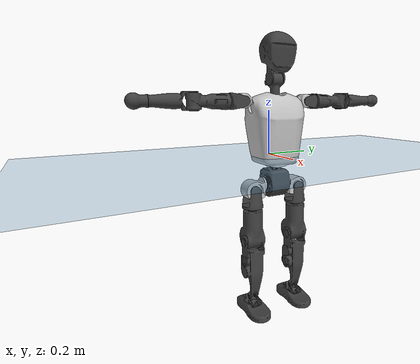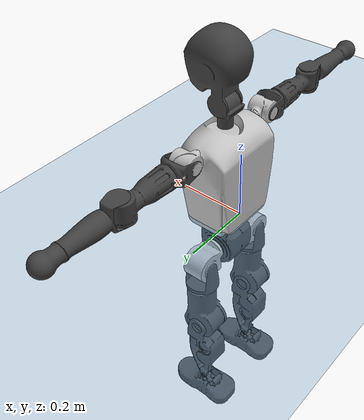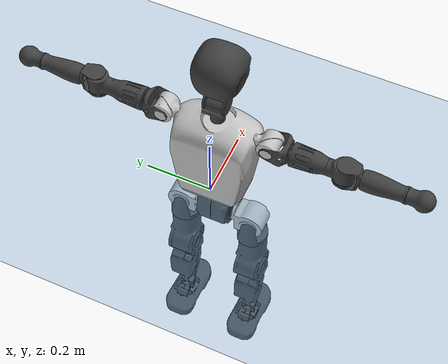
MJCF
<mujoco model="T1">
  <compiler angle="radian" assetdir="assets" balanceinertia="true" inertiafromgeom="false"/>

  <option timestep="0.005" density="1.2" viscosity="2e-05"/>

  <size nkey="1"/>

  <visual>
    <quality shadowsize="8192"/>
    <map shadowclip="0.5"/>
  </visual>

  <default>
    <default class="/">
      <joint armature="0.01" damping="0.01" frictionloss="0.1"/>
      <geom contype="0" conaffinity="0" group="1" solref="-1000 -80"/>
      <site size="0.01 0.005 0.005" group="5"/>
      <general forcelimited="true" biastype="affine" gainprm="25" biasprm="0 -25 -0.6"/>
      <default class="t1">
        <geom rgba="0.25 0.25 0.25 1"/>
        <default class="visual">
          <geom type="mesh" group="2"/>
        </default>
        <default class="collision">
          <geom group="3"/>
        </default>
        <default class="foot">
          <geom size="0.1115 0.05 0.015" type="box" condim="6" group="4" priority="1" solimp="0.015 1 0.015"/>
        </default>
        <default class="reward_collision_sphere">
          <geom group="5" rgba="1 0 0 1"/>
        </default>
      </default>
    </default>
  </default>

  <asset>
    <texture type="skybox" colorspace="auto" name="//unnamed_texture_0" builtin="gradient" rgb1="0.95 0.95 0.95" rgb2="0.95 0.95 0.95" width="100" height="600"/>
    <texture type="2d" colorspace="auto" name="texplane" builtin="checker" rgb1="0.345 0.575 0.748" rgb2="0.345 0.575 0.748" markrgb="1 1 1" width="512" height="512"/>
    <material name="MatPlane" class="/" texture="texplane" texuniform="true" texrepeat="2 2" specular="0.9"/>
    <mesh name="Trunk" class="/" file="Trunk.stl"/>
    <mesh name="H1" class="/" file="H1.stl"/>
    <mesh name="H2" class="/" file="H2.stl"/>
    <mesh name="AL1" class="/" file="AL1.stl"/>
    <mesh name="AL2" class="/" file="AL2.stl"/>
    <mesh name="AL3" class="/" file="AL3.stl"/>
    <mesh name="left_hand_link" class="/" file="left_hand_link.stl"/>
    <mesh name="AR1" class="/" file="AR1.stl"/>
    <mesh name="AR2" class="/" file="AR2.stl"/>
    <mesh name="AR3" class="/" file="AR3.stl"/>
    <mesh name="right_hand_link" class="/" file="right_hand_link.stl"/>
    <mesh name="Waist" class="/" file="Waist.stl"/>
    <mesh name="Hip_Pitch_Left" class="/" file="Hip_Pitch_Left.stl"/>
    <mesh name="Hip_Roll_Left" class="/" file="Hip_Roll_Left.stl"/>
    <mesh name="Hip_Yaw_Left" class="/" file="Hip_Yaw_Left.stl"/>
    <mesh name="Shank_Left" class="/" file="Shank_Left.stl"/>
    <mesh name="Ankle_Cross_Left" class="/" file="Ankle_Cross_Left.stl"/>
    <mesh name="left_foot_link" class="/" file="left_foot_link.stl"/>
    <mesh name="Hip_Pitch_Right" class="/" file="Hip_Pitch_Right.stl"/>
    <mesh name="Hip_Roll_Right" class="/" file="Hip_Roll_Right.stl"/>
    <mesh name="Hip_Yaw_Right" class="/" file="Hip_Yaw_Right.stl"/>
    <mesh name="Shank_Right" class="/" file="Shank_Right.stl"/>
    <mesh name="Ankle_Cross_Right" class="/" file="Ankle_Cross_Right.stl"/>
    <mesh name="right_foot_link" class="/" file="right_foot_link.stl"/>
  </asset>

  <worldbody>
    <geom name="floor" class="/" size="100 100 0.125" type="plane" group="0" material="MatPlane"/>
    <light name="toplight_shadow" class="/" pos="0 0 5" dir="0.0990148 0.0990148 -0.990148" type="directional" ambient="0.04 0.04 0.04" diffuse="0.55 0.55 0.55" specular="0.12 0.12 0.12"/>
    <light name="toplight_fill" class="/" pos="0 0 5" dir="0.0990148 0.0990148 -0.990148" type="directional" castshadow="false" ambient="0.04 0.04 0.04" diffuse="0.3 0.3 0.3" specular="0.08 0.08 0.08"/>
    <body name="trunk" childclass="t1" pos="-0.000458533 0.00031462 8.66824e-05" quat="0.999999 -0.000562115 -0.000772961 -0.000611288">
      <inertial pos="0.04459 -0.00246396 0.117336" quat="0.99997 0.00197151 -0.00735987 0.000972728" mass="11.6061" diaginertia="0.0410629 0.0941629 0.0918969"/>
      <joint name="//unnamed_joint_0" type="free" armature="0" damping="0" frictionloss="0"/>
      <geom name="//unnamed_geom_1" class="visual" rgba="0.76 0.76 0.76 1" mesh="Trunk"/>
      <geom name="//unnamed_geom_2" class="collision" size="0.0750104 0.100014 0.150021" pos="0.050957 0 0.13336" type="box"/>
      <geom name="//unnamed_geom_3" class="reward_collision_sphere" size="0.115016" pos="0.050957 0 0.111133"/>
      <geom name="//unnamed_geom_4" class="reward_collision_sphere" size="0.0150021" pos="0.050957 0.0883831 0"/>
      <geom name="//unnamed_geom_5" class="reward_collision_sphere" size="0.0150021" pos="0.050957 -0.0883831 0"/>
      <geom name="//unnamed_geom_6" class="reward_collision_sphere" size="0.0150021" pos="0.050957 0.111259 0.200039"/>
      <geom name="//unnamed_geom_7" class="reward_collision_sphere" size="0.0150021" pos="0.050957 -0.111259 0.200039"/>
      <site name="imu" pos="0.00435307 -0.00401741 -0.00442628" size="0.0100014"/>
      <camera name="track" pos="0 -2.0796 0" quat="0.707107 0.707107 0 0" mode="trackcom"/>
      <camera name="ego_camera" pos="0.103612 0 0.466759" quat="-0.5 -0.5 0.5 0.5"/>
      <body name="H1" pos="0.0528935 -0.000660315 0.268638" quat="1 -0.000346832 0.000188577 -0.00023054">
        <inertial pos="-0.00150981 0.000738596 0.063212" quat="0.76585 -0.00705856 -0.00692556 0.642943" mass="0.43571" diaginertia="0.000104421 0.000259788 0.000243933"/>
        <joint name="AAHead_yaw" pos="0 0 0" axis="-0.0105504 -0.0030474 0.99994" stiffness="0.0077516" range="-1.55044 1.5746" armature="0.00985946" damping="0.00864831" frictionloss="0.0998991"/>
        <geom name="//unnamed_geom_8" class="visual" mesh="H1"/>
        <body name="H2" pos="-0.000370424 0.00210105 0.0696728" quat="1 -0.000110279 -0.000171132 -1.58566e-05">
          <inertial pos="0.0055572 0.00288053 0.10919" quat="0.988358 0.107031 -0.0754308 -0.077473" mass="0.627703" diaginertia="0.000914686 0.00229365 0.00290913"/>
          <joint name="Head_pitch" pos="0 0 0" axis="0.000681943 -0.999992 0.00389521" range="-1.22232 0.349024" armature="0.00883157" damping="0.00683663" frictionloss="0.1128"/>
          <geom name="//unnamed_geom_9" class="visual" mesh="H2"/>
          <geom name="//unnamed_geom_10" class="collision" size="0.080011" pos="0.00849283 0 0.122246"/>
          <geom name="//unnamed_geom_11" class="reward_collision_sphere" size="0.0900124" pos="0.0169857 0 0.111133"/>
        </body>
      </body>
      <body name="AL1" pos="0.0510942 0.109618 0.241107" quat="1 -1.84875e-06 0.000460047 1.5532e-05">
        <inertial pos="-0.00305137 0.0470477 0.00126357" quat="0.502803 0.495333 -0.504622 0.497183" mass="0.53395" diaginertia="0.000603796 0.00157812 0.00049033"/>
        <joint name="Left_Shoulder_Pitch" pos="0 0 0" axis="0.00117316 0.999916 -0.0128917" range="-3.30923 1.22761" armature="0.0102119" damping="0.00692436" frictionloss="0.0983347"/>
        <geom name="//unnamed_geom_12" class="visual" rgba="0.76 0.76 0.76 1" mesh="AL1"/>
        <body name="AL2" pos="-0.000180686 0.0482598 -0.00111208" quat="1 0.000125542 -0.000101431 7.35349e-05">
          <inertial pos="0.00322329 0.0396799 -0.00198255" quat="0.493091 0.50928 -0.489226 0.508087" mass="0.158784" diaginertia="0.00017555 0.00041776 0.000299177"/>
          <joint name="Left_Shoulder_Roll" pos="0 0 0" axis="-1 -3.17171e-05 -0.00090292" range="-1.57465 1.74004" armature="0.0102171" damping="0.0045538" frictionloss="0.101612"/>
          <geom name="//unnamed_geom_13" class="visual" mesh="AL2"/>
          <body name="AL3" pos="0.000701742 0.0627409 -9.55772e-06" quat="1 0.000132567 -0.000201614 0.000218784">
            <inertial pos="-0.000610739 0.0887814 4.49983e-05" quat="0.706874 0.707239 0.00855736 0.00830879" mass="1.02176" diaginertia="0.00568823 0.0156816 0.00102449"/>
            <joint name="Left_Elbow_Pitch" pos="0 0 0" axis="0.00144975 -0.999999 0.000596683" range="-2.25186 2.27674" armature="0.0100873" damping="0.0233572" frictionloss="0.112257"/>
            <geom name="//unnamed_geom_14" class="visual" mesh="AL3"/>
            <geom name="//unnamed_geom_15" class="collision" size="0.0300041 0.0750104" pos="0 0.0519901 0" quat="0.707105 0.707108 0 0" type="cylinder"/>
            <geom name="//unnamed_geom_16" class="reward_collision_sphere" size="0.036005"/>
            <body name="left_hand_link" pos="0.00259206 0.154012 0.00163644" quat="1 0.000157001 -9.61236e-05 0.000101137">
              <inertial pos="0.00198114 0.113314 -0.00142873" quat="0.708089 0.706103 -0.00312266 -0.00437108" mass="0.326521" diaginertia="0.00357987 0.0101516 0.000371345"/>
              <joint name="Left_Elbow_Yaw" pos="0 0 0" axis="0.000736432 -0.000431923 1" range="-2.45045 0.0204972" armature="0.010233" damping="0.00984023" frictionloss="0.100249"/>
              <geom name="//unnamed_geom_17" class="visual" mesh="left_hand_link"/>
              <geom name="//unnamed_geom_18" class="collision" size="0.0300041 0.0875121" pos="0 0.135174 0" quat="0.707105 0.707108 0 0" type="cylinder"/>
              <geom name="//unnamed_geom_19" class="reward_collision_sphere" size="0.0500069"/>
              <geom name="//unnamed_geom_20" class="reward_collision_sphere" size="0.0350048" pos="0 0.114378 0"/>
              <geom name="//unnamed_geom_21" class="reward_collision_sphere" size="0.0350048" pos="0 0.223557 0"/>
            </body>
          </body>
        </body>
      </body>
      <body name="AR1" pos="0.0480737 -0.111136 0.243171" quat="1 -4.38926e-06 -0.000659668 -0.000563866">
        <inertial pos="-0.00163816 -0.0462649 -0.000755625" quat="0.503679 0.495711 -0.50465 0.495889" mass="0.546552" diaginertia="0.000612073 0.00160722 0.000511822"/>
        <joint name="Right_Shoulder_Pitch" pos="0 0 0" axis="-0.001454 -0.999995 -0.00275145" range="-1.21699 3.30488" armature="0.0105044" damping="0.000449731" frictionloss="0.103218"/>
        <geom name="//unnamed_geom_22" class="visual" rgba="0.76 0.76 0.76 1" mesh="AR1"/>
        <body name="AR2" pos="-0.000702495 -0.0479961 -0.00234299" quat="0.999999 -0.000274705 0.000971347 -3.74509e-05">
          <inertial pos="0.00421175 -0.0403395 0.000813458" quat="0.511151 0.491628 -0.509224 0.487562" mass="0.158569" diaginertia="0.000174974 0.000414404 0.000297181"/>
          <joint name="Right_Shoulder_Roll" pos="0 0 0" axis="-0.999981 0.0059529 0.00160707" range="-1.72778 1.58097" armature="0.0100659" damping="0" frictionloss="0.0994716"/>
          <geom name="//unnamed_geom_23" class="visual" mesh="AR2"/>
          <body name="AR3" pos="-0.00124263 -0.0635908 -0.000804025" quat="0.999999 -0.000385107 0.000128701 0.00097628">
            <inertial pos="0.00218793 -0.0882716 -0.000696716" quat="0.707648 0.70656 -0.00121508 0.00218436" mass="1.02019" diaginertia="0.00582614 0.0161623 0.00108098"/>
            <joint name="Right_Elbow_Pitch" pos="0 0 0" axis="0.00019195 1 -0.000191286" stiffness="0.00301434" range="-2.25301 2.21746" armature="0.0101949" damping="0.0115665" frictionloss="0.0981139"/>
            <geom name="//unnamed_geom_24" class="visual" mesh="AR3"/>
            <geom name="//unnamed_geom_25" class="collision" size="0.0300041 0.0750104" pos="0 -0.0519901 0" quat="0.707105 0.707108 0 0" type="cylinder"/>
            <geom name="//unnamed_geom_26" class="reward_collision_sphere" size="0.036005"/>
            <body name="right_hand_link" pos="-0.000972323 -0.15327 0.00127117" quat="1 -0.000435636 6.9288e-05 -0.000812168">
              <inertial pos="0.00197867 -0.114937 -0.00098636" quat="0.706583 0.70763 -0.000776118 -0.000949235" mass="0.312899" diaginertia="0.00337891 0.00950429 0.000362974"/>
              <joint name="Right_Elbow_Yaw" pos="0 0 0" axis="-0.00038427 0.00353345 0.999994" stiffness="0.000987994" range="-0.00165201 2.39828" armature="0.0104301" damping="0.00428909" frictionloss="0.100965"/>
              <geom name="//unnamed_geom_27" class="visual" mesh="right_hand_link"/>
              <geom name="//unnamed_geom_28" class="collision" size="0.0300041 0.0875121" pos="0 -0.135174 0" quat="0.707105 0.707108 0 0" type="cylinder"/>
              <geom name="//unnamed_geom_29" class="reward_collision_sphere" size="0.0500069"/>
              <geom name="//unnamed_geom_30" class="reward_collision_sphere" size="0.0350048" pos="0 -0.114378 0"/>
              <geom name="//unnamed_geom_31" class="reward_collision_sphere" size="0.0350048" pos="0 -0.223557 0"/>
            </body>
          </body>
        </body>
      </body>
      <body name="Waist" pos="0.0522159 -0.0030053 -0.12842" quat="1 0.000263872 4.75154e-05 -0.000262517">
        <inertial pos="0.000413765 0.000873525 0.00816074" quat="0.983821 0.00485984 -0.178997 0.0056348" mass="2.51524" diaginertia="0.0023909 0.00641191 0.00787044"/>
        <joint name="Waist" pos="0 0 0" axis="0.00590818 7.52209e-05 0.999983" stiffness="0.0012157" range="-1.55843 1.58701" armature="0.0102307" damping="0.000338278" frictionloss="0.100788"/>
        <geom name="//unnamed_geom_32" class="visual" mesh="Waist"/>
        <body name="Hip_Pitch_Left" pos="0.001889 0.110706 -4.51538e-05" quat="1 -6.75917e-05 -7.95981e-05 -6.93808e-05">
          <inertial pos="0.0014484 -0.00749017 -0.0223698" quat="0.974521 0.223595 0.0168646 0.00539567" mass="1.03367" diaginertia="0.00080315 0.00178619 0.00213744"/>
          <joint name="Left_Hip_Pitch" pos="0 0 0" axis="-0.0002257 0.999997 0.00257513" range="-1.80977 1.61072" armature="0.010416" damping="0.00119785" frictionloss="0.0999862"/>
          <geom name="//unnamed_geom_33" class="visual" rgba="0.76 0.76 0.76 1" mesh="Hip_Pitch_Left"/>
          <body name="Hip_Roll_Left" pos="0.00269002 0.00052405 -0.0239092" quat="1 2.96216e-05 -1.26634e-05 9.28356e-05">
            <inertial pos="0.00133639 0.000794387 -0.0614512" quat="0.707153 -0.00649663 -0.00641293 0.707002" mass="0.393648" diaginertia="0.000800686 0.00184176 0.000869834"/>
            <joint name="Left_Hip_Roll" pos="0 0 0" axis="-1 -0.000233716 0.000821829" range="-1.55448 0.247659" armature="0.00978695" damping="0.00458678" frictionloss="0.101319"/>
            <geom name="//unnamed_geom_34" class="visual" mesh="Hip_Roll_Left"/>
            <geom name="//unnamed_geom_35" class="reward_collision_sphere" size="0.0550076"/>
            <body name="Hip_Yaw_Left" pos="-0.000243497 0.00176364 -0.0890653" quat="1 -0.000126647 -0.00012546 0.000140072">
              <inertial pos="-0.0058556 -0.000116342 -0.100209" quat="0.69186 -0.0277472 -0.0314516 0.720813" mass="2.11845" diaginertia="0.011177 0.029701 0.00435713"/>
              <joint name="Left_Hip_Yaw" pos="0 0 0" axis="-0.00187599 -0.00151007 -0.999997" range="-0.992478 1.05707" armature="0.0100591" damping="0" frictionloss="0.0991306"/>
              <geom name="//unnamed_geom_36" class="visual" mesh="Hip_Yaw_Left"/>
              <geom name="//unnamed_geom_37" class="collision" size="0.0500069 0.080011" type="cylinder"/>
              <body name="Shank_Left" pos="-0.0117431 0.0011176 -0.151529" quat="1 -0.00013272 -0.00010953 -1.23349e-05">
                <inertial pos="-0.00555522 0.000646418 -0.13992" quat="0.997596 0.00060684 -0.0208794 0.0660729" mass="1.75957" diaginertia="0.0155427 0.0420651 0.00311007"/>
                <joint name="Left_Knee_Pitch" pos="0 0 0" axis="0.00198349 0.999979 0.0061244" stiffness="0.00457993" range="0.00198362 2.34729" armature="0.0099869" damping="0.0158347" frictionloss="0.105294"/>
                <geom name="//unnamed_geom_38" class="visual" mesh="Shank_Left"/>
                <geom name="//unnamed_geom_39" class="collision" size="0.0500069 0.0750104" pos="0 0 -0.13336" type="cylinder"/>
                <geom name="//unnamed_geom_40" class="reward_collision_sphere" size="0.065009"/>
                <body name="Ankle_Cross_Left" pos="0.000811275 0.000773241 -0.313092" quat="1 0.000271072 -0.000272116 -0.000454686">
                  <inertial pos="-0.00525525 0.00240044 -0.00884066" quat="0.443994 0.55074 0.550839 0.442867" mass="0.0717928" diaginertia="1.27597e-05 3.01952e-05 1.92118e-05"/>
                  <joint name="Left_Ankle_Pitch" pos="0 0 0" axis="0.00330593 0.999972 -0.00664235" range="-0.884184 0.33275" armature="0.00901321" damping="0.00346347" frictionloss="0.100549"/>
                  <geom name="//unnamed_geom_41" class="visual" mesh="Ankle_Cross_Left"/>
                  <body name="left_foot_link" pos="0.000708414 -0.000499086 -0.0114808" quat="0.999999 -0.000468085 -4.81706e-06 -0.0012098">
                    <inertial pos="-0.00242332 -0.000150402 -0.00921879" quat="-1.31457e-05 0.620706 -0.000379464 0.784043" mass="0.677178" diaginertia="0.00118539 0.00284985 0.00375471"/>
                    <joint name="Left_Ankle_Roll" pos="0 0 0" axis="-1 -0.000163667 0.000503553" range="-0.483629 0.39446" armature="0.00999669" damping="0.00982942" frictionloss="0.0889031"/>
                    <geom name="//unnamed_geom_42" class="visual" mesh="left_foot_link"/>
                    <geom name="left_foot" class="foot" size="0.104677 0.0497465 0.0153496" pos="0.00849283 0 -0.0166699"/>
                    <geom name="//unnamed_geom_44" class="reward_collision_sphere" size="0.0520072" pos="0.00849283 0 -0.0166699"/>
                    <geom name="//unnamed_geom_45" class="reward_collision_sphere" size="0.0300041" pos="0.0806818 -0.0239154 -0.0166699"/>
                    <geom name="//unnamed_geom_46" class="reward_collision_sphere" size="0.0300041" pos="-0.0594498 -0.0239154 -0.0166699"/>
                    <site name="left_foot" class="foot" pos="0.00849283 0 -0.0166699" size="0.0100014"/>
                  </body>
                </body>
              </body>
            </body>
          </body>
        </body>
        <body name="Hip_Pitch_Right" pos="-0.00254957 -0.112278 0.000157455" quat="1 -0.000505962 0.000197399 3.02154e-05">
          <inertial pos="-0.000459195 0.00664446 -0.0195658" quat="0.973485 -0.228295 0.0136683 -0.00473833" mass="1.01729" diaginertia="0.000818868 0.00178755 0.00217413"/>
          <joint name="Right_Hip_Pitch" pos="0 0 0" axis="0.00165084 -0.999995 0.00253919" stiffness="0.0043134" range="-1.55353 1.80437" armature="0.0104459" damping="0.0066875" frictionloss="0.103809"/>
          <geom name="//unnamed_geom_47" class="visual" rgba="0.76 0.76 0.76 1" mesh="Hip_Pitch_Right"/>
          <body name="Hip_Roll_Right" pos="0.0021742 -0.00227442 -0.0235129" quat="1 -2.38668e-05 6.95174e-05 -1.42668e-05">
            <inertial pos="0.000106881 -0.000986125 -0.0585731" quat="0.708601 -0.00541438 -0.00716835 0.705552" mass="0.396639" diaginertia="0.000769796 0.00187793 0.000876291"/>
            <joint name="Right_Hip_Roll" pos="0 0 0" axis="-0.999999 -0.000417387 -0.00148986" stiffness="0.0092612" range="-0.199207 1.5211" armature="0.00970346" damping="0" frictionloss="0.0880272"/>
            <geom name="//unnamed_geom_48" class="visual" mesh="Hip_Roll_Right"/>
            <geom name="//unnamed_geom_49" class="reward_collision_sphere" size="0.0550076"/>
            <body name="Hip_Yaw_Right" pos="0.00255053 -0.00125811 -0.0903376" quat="1 3.55822e-05 3.28428e-05 4.70878e-05">
              <inertial pos="-0.00560201 -0.00105655 -0.0985459" quat="0.723315 -0.0308969 -0.0341631 0.688981" mass="2.14553" diaginertia="0.0110158 0.0307991 0.00425679"/>
              <joint name="Right_Hip_Yaw" pos="0 0 0" axis="0.00491505 0.00779044 -0.999958" stiffness="0.00350529" range="-1.0019 1.00247" armature="0.00933867" damping="0.0135824" frictionloss="0.102414"/>
              <geom name="//unnamed_geom_50" class="visual" mesh="Hip_Yaw_Right"/>
              <geom name="//unnamed_geom_51" class="collision" size="0.0500069 0.080011" type="cylinder"/>
              <body name="Shank_Right" pos="-0.00924981 -0.000346658 -0.149084" quat="1 -0.000158046 -1.39261e-05 0.000327314">
                <inertial pos="-0.00556396 0.000405424 -0.136689" quat="0.998971 0.00617799 -0.0210373 -0.0397035" mass="1.82429" diaginertia="0.0159983 0.0431199 0.00338375"/>
                <joint name="Right_Knee_Pitch" pos="0 0 0" axis="-0.00554563 -0.999971 0.00515937" range="-2.33536 0.00982397" armature="0.0100258" damping="0.0201265" frictionloss="0.097289"/>
                <geom name="//unnamed_geom_52" class="visual" mesh="Shank_Right"/>
                <geom name="//unnamed_geom_53" class="collision" size="0.0500069 0.0750104" pos="0 0 -0.13336" type="cylinder"/>
                <geom name="//unnamed_geom_54" class="reward_collision_sphere" size="0.065009"/>
                <body name="Ankle_Cross_Right" pos="-0.000129399 -0.000521428 -0.312844" quat="1 -0.000514258 -7.59742e-05 0.000719004">
                  <inertial pos="-0.00344917 0.00188905 -0.00913411" quat="0.443219 0.55098 0.551036 0.443099" mass="0.0731206" diaginertia="1.24187e-05 3.11502e-05 1.89383e-05"/>
                  <joint name="Right_Ankle_Pitch" pos="0 0 0" axis="0.000143229 -0.999996 0.00296254" range="-0.401202 0.865759" armature="0.0101702" damping="0.00573172" frictionloss="0.100843"/>
                  <geom name="//unnamed_geom_55" class="visual" mesh="Ankle_Cross_Right"/>
                  <body name="right_foot_link" pos="0.00222757 0.000355038 -0.0134055" quat="1 2.56473e-05 5.81416e-05 6.17937e-05">
                    <inertial pos="7.30127e-06 0.00147392 -0.00988975" quat="-0.000653566 0.621154 -0.00164966 0.783686" mass="0.722133" diaginertia="0.00123098 0.00296807 0.00373703"/>
                    <joint name="Right_Ankle_Roll" pos="0 0 0" axis="-0.99998 -0.00390184 -0.00505058" range="-0.430095 0.436881" armature="0.0103378" damping="0.0082492" frictionloss="0.0877106"/>
                    <geom name="//unnamed_geom_56" class="visual" mesh="right_foot_link"/>
                    <geom name="right_foot" class="foot" size="0.100021 0.0474646 0.0151777" pos="0.00849283 0 -0.0166699"/>
                    <geom name="//unnamed_geom_58" class="reward_collision_sphere" size="0.0400055"/>
                    <geom name="//unnamed_geom_59" class="reward_collision_sphere" size="0.0300041" pos="0.00849283 0 -0.0166699"/>
                    <geom name="//unnamed_geom_60" class="reward_collision_sphere" size="0.0300041" pos="0.0806818 0.0239154 -0.0166699"/>
                    <geom name="//unnamed_geom_61" class="reward_collision_sphere" size="0.0300041" pos="-0.0594498 0.0239154 -0.0166699"/>
                    <site name="right_foot" class="foot" pos="0.00849283 0 -0.0166699" size="0.0100014"/>
                  </body>
                </body>
              </body>
            </body>
          </body>
        </body>
      </body>
    </body>
  </worldbody>

  <contact>
    <pair class="/" geom1="floor" geom2="left_foot" name="//unnamed_contact_0"/>
    <pair class="/" geom1="floor" geom2="right_foot" name="//unnamed_contact_1"/>
  </contact>

  <actuator>
    <general name="AAHead_yaw" class="/" joint="AAHead_yaw" forcerange="-7.27947 7.27947" gainprm="23.3199" biasprm="0 -23.3199 -0.579136"/>
    <general name="Head_pitch" class="/" joint="Head_pitch" forcerange="-6.72477 6.72477" gainprm="23.3199" biasprm="0 -23.3199 -0.579136"/>
    <general name="Left_Shoulder_Pitch" class="/" joint="Left_Shoulder_Pitch" forcerange="-16.1846 16.1846" gainprm="23.3199" biasprm="0 -23.3199 -0.579136"/>
    <general name="Left_Shoulder_Roll" class="/" joint="Left_Shoulder_Roll" forcerange="-18.1512 18.1512" gainprm="23.3199" biasprm="0 -23.3199 -0.579136"/>
    <general name="Left_Elbow_Pitch" class="/" joint="Left_Elbow_Pitch" forcerange="-18.3299 18.3299" gainprm="23.3199" biasprm="0 -23.3199 -0.579136"/>
    <general name="Left_Elbow_Yaw" class="/" joint="Left_Elbow_Yaw" forcerange="-18.244 18.244" gainprm="23.3199" biasprm="0 -23.3199 -0.579136"/>
    <general name="Right_Shoulder_Pitch" class="/" joint="Right_Shoulder_Pitch" forcerange="-18.4695 18.4695" gainprm="23.3199" biasprm="0 -23.3199 -0.579136"/>
    <general name="Right_Shoulder_Roll" class="/" joint="Right_Shoulder_Roll" forcerange="-18.1502 18.1502" gainprm="23.3199" biasprm="0 -23.3199 -0.579136"/>
    <general name="Right_Elbow_Pitch" class="/" joint="Right_Elbow_Pitch" forcerange="-18.0952 18.0952" gainprm="23.3199" biasprm="0 -23.3199 -0.579136"/>
    <general name="Right_Elbow_Yaw" class="/" joint="Right_Elbow_Yaw" forcerange="-17.9562 17.9562" gainprm="23.3199" biasprm="0 -23.3199 -0.579136"/>
    <general name="Waist" class="/" joint="Waist" forcerange="-30.4081 30.4081" gainprm="23.3199" biasprm="0 -23.3199 -0.579136"/>
    <general name="Left_Hip_Pitch" class="/" joint="Left_Hip_Pitch" forcerange="-44.0446 44.0446" gainprm="23.3199" biasprm="0 -23.3199 -0.579136"/>
    <general name="Left_Hip_Roll" class="/" joint="Left_Hip_Roll" forcerange="-30.3028 30.3028" gainprm="23.3199" biasprm="0 -23.3199 -0.579136"/>
    <general name="Left_Hip_Yaw" class="/" joint="Left_Hip_Yaw" forcerange="-30.2477 30.2477" gainprm="23.3199" biasprm="0 -23.3199 -0.579136"/>
    <general name="Left_Knee_Pitch" class="/" joint="Left_Knee_Pitch" forcerange="-57.7974 57.7974" gainprm="23.3199" biasprm="0 -23.3199 -0.579136"/>
    <general name="Left_Ankle_Pitch" class="/" joint="Left_Ankle_Pitch" forcerange="-21.7926 21.7926" gainprm="23.3199" biasprm="0 -23.3199 -0.579136"/>
    <general name="Left_Ankle_Roll" class="/" joint="Left_Ankle_Roll" forcerange="-13.8413 13.8413" gainprm="23.3199" biasprm="0 -23.3199 -0.579136"/>
    <general name="Right_Hip_Pitch" class="/" joint="Right_Hip_Pitch" forcerange="-45.7601 45.7601" gainprm="23.3199" biasprm="0 -23.3199 -0.579136"/>
    <general name="Right_Hip_Roll" class="/" joint="Right_Hip_Roll" forcerange="-32.3077 32.3077" gainprm="23.3199" biasprm="0 -23.3199 -0.579136"/>
    <general name="Right_Hip_Yaw" class="/" joint="Right_Hip_Yaw" forcerange="-28.6522 28.6522" gainprm="23.3199" biasprm="0 -23.3199 -0.579136"/>
    <general name="Right_Knee_Pitch" class="/" joint="Right_Knee_Pitch" forcerange="-58.1144 58.1144" gainprm="23.3199" biasprm="0 -23.3199 -0.579136"/>
    <general name="Right_Ankle_Pitch" class="/" joint="Right_Ankle_Pitch" forcerange="-19.6802 19.6802" gainprm="23.3199" biasprm="0 -23.3199 -0.579136"/>
    <general name="Right_Ankle_Roll" class="/" joint="Right_Ankle_Roll" forcerange="-15.9786 15.9786" gainprm="23.3199" biasprm="0 -23.3199 -0.579136"/>
  </actuator>

  <sensor>
    <gyro site="imu" name="imu_angular_velocity"/>
    <velocimeter site="imu" name="imu_linear_velocity"/>
    <framelinvel objtype="site" objname="left_foot" name="left_foot_global_linear_velocity"/>
    <framelinvel objtype="site" objname="right_foot" name="right_foot_global_linear_velocity"/>
  </sensor>

  <keyframe>
    <key name="home" qpos="0 0 0.6385 1 0 0 0 0 0 0 1.4 0 -0.4 0 -1.4 0 0.4 0 -0.4 0 0 0.8 -0.4 0 0.4 0 0 -0.8 0.4 0"/>
  </keyframe>
</mujoco>
